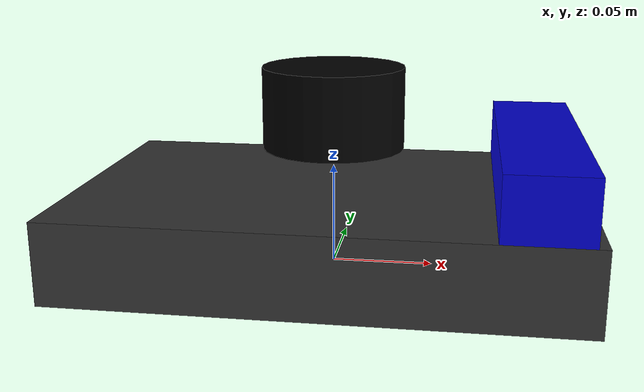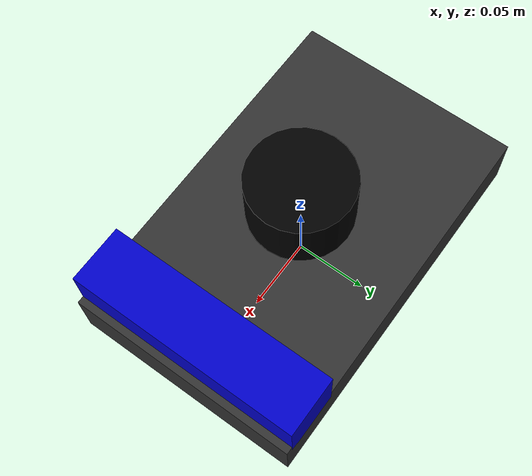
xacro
<?xml version="1.0"?>
<robot name="anzym_robot" xmlns:xacro="http://ros.org/wiki/xacro">

  <!-- Arguments -->
  <xacro:arg name="laser_xyz" default="0.0 0.0 0.08" />
  <xacro:arg name="camera_xyz" default="0.10 0.0 0.05" />

  <!-- Base Link -->
  <link name="base_link">
    <visual>
      <origin xyz="0 0 0.02" rpy="0 0 0"/>
      <geometry>
        <box size="0.25 0.16 0.04"/>
      </geometry>
      <material name="dark_grey">
        <color rgba="0.2 0.2 0.2 1.0"/>
      </material>
    </visual>
    <collision>
      <origin xyz="0 0 0.02" rpy="0 0 0"/>
      <geometry>
        <box size="0.25 0.16 0.04"/>
      </geometry>
    </collision>
  </link>

  <!-- Footprint (Projected on ground) -->
  <link name="base_footprint"/>
  <joint name="base_joint" type="fixed">
    <parent link="base_footprint"/>
    <child link="base_link"/>
    <origin xyz="0 0 0.0" rpy="0 0 0"/>
  </joint>

  <!-- Laser Link (YDLidar) -->
  <link name="laser"> <!-- Must match frame_id in ydlidar.yaml -->
    <visual>
      <origin xyz="0 0 0" rpy="0 0 0"/>
      <geometry>
        <cylinder length="0.04" radius="0.035"/>
      </geometry>
      <material name="black">
        <color rgba="0.0 0.0 0.0 1.0"/>
      </material>
    </visual>
  </link>

  <joint name="laser_joint" type="fixed">
    <parent link="base_link"/>
    <child link="laser"/>
    <origin xyz="$(arg laser_xyz)" rpy="0 0 0"/>
  </joint>

  <!-- Camera Link (Astra) -->
  <link name="camera_link">
    <visual>
      <origin xyz="0 0 0" rpy="0 0 0"/>
      <geometry>
        <box size="0.04 0.16 0.04"/>
      </geometry>
      <material name="blue">
        <color rgba="0.0 0.0 0.8 1.0"/>
      </material>
    </visual>
  </link>

  <joint name="camera_joint" type="fixed">
    <parent link="base_link"/>
    <child link="camera_link"/>
    <origin xyz="$(arg camera_xyz)" rpy="0 0 0"/>
  </joint>

  <!-- Depth Optical Frame (Standard for Openni/Astra) -->
  <link name="camera_depth_optical_frame"/>
  <joint name="camera_optical_joint" type="fixed">
    <parent link="camera_link"/>
    <child link="camera_depth_optical_frame"/>
    <!-- Rotate from ROS (Forward X) to Optical (Forward Z) -->
    <origin xyz="0 0 0" rpy="-1.5708 0 -1.5708"/>
  </joint>

</robot>
